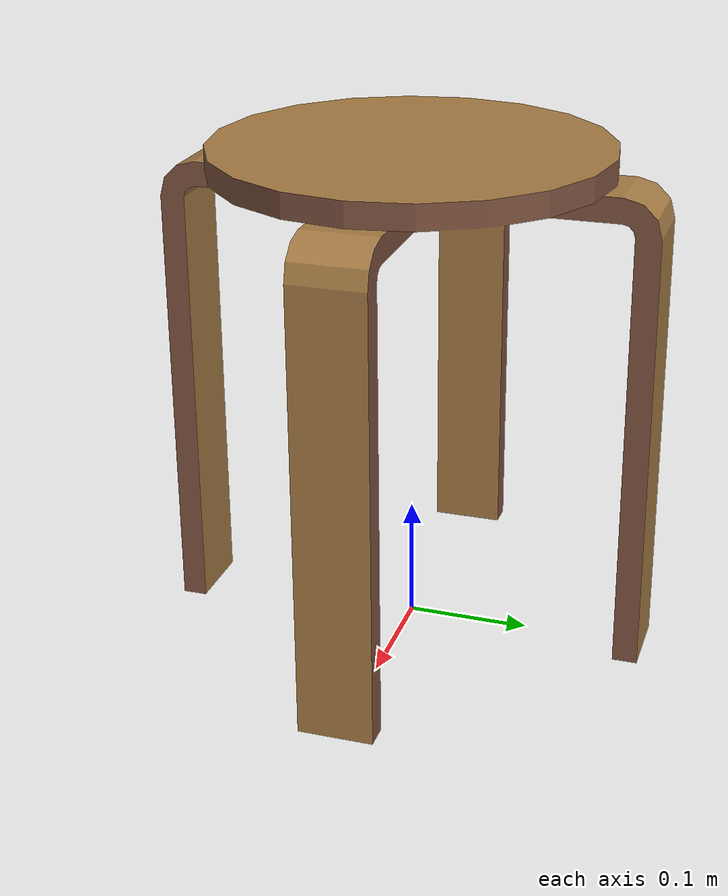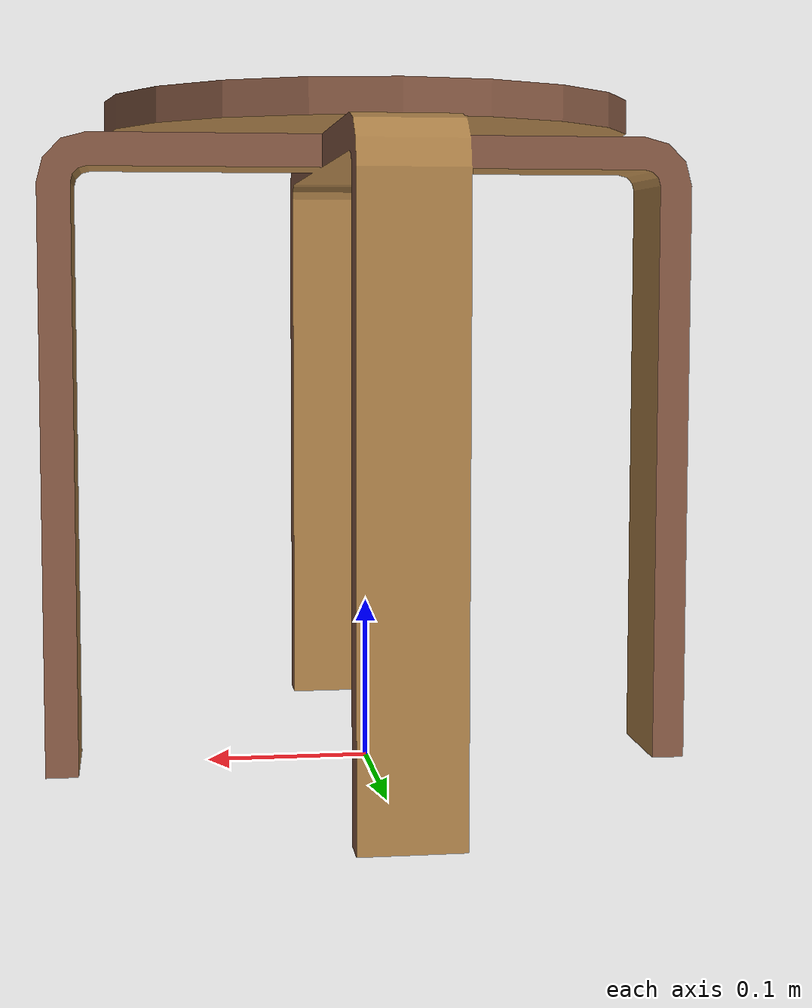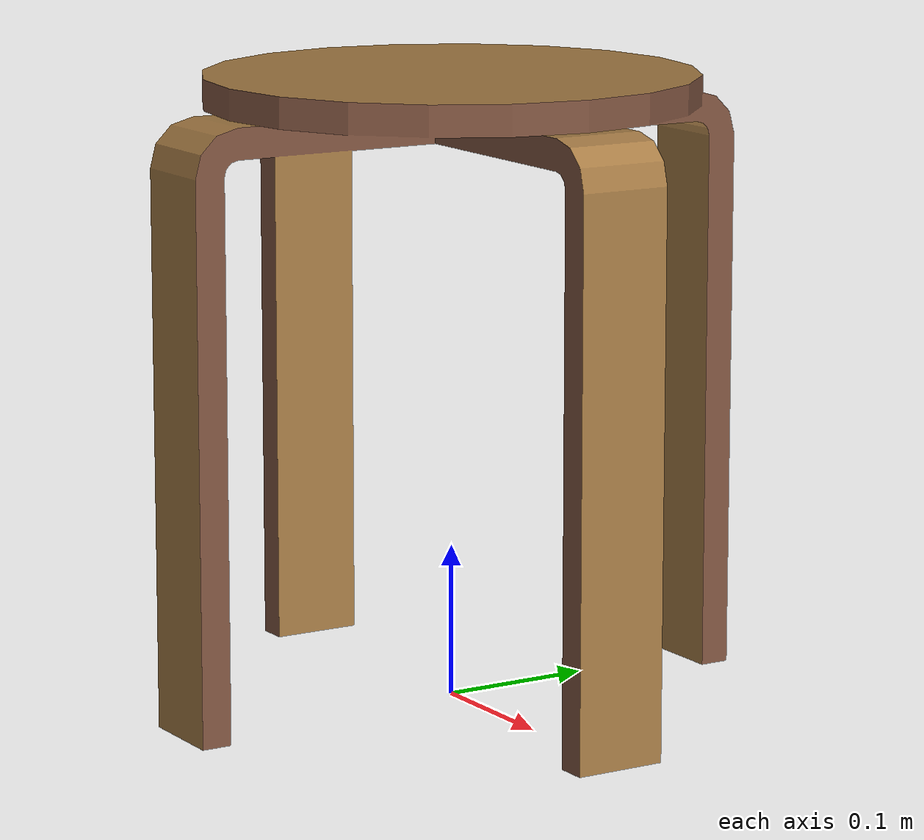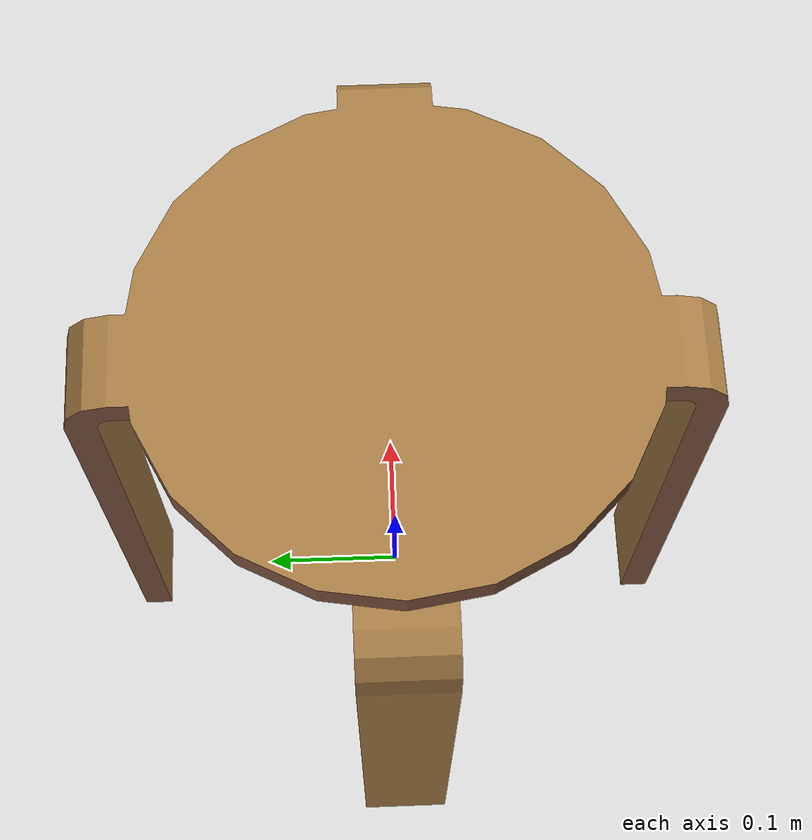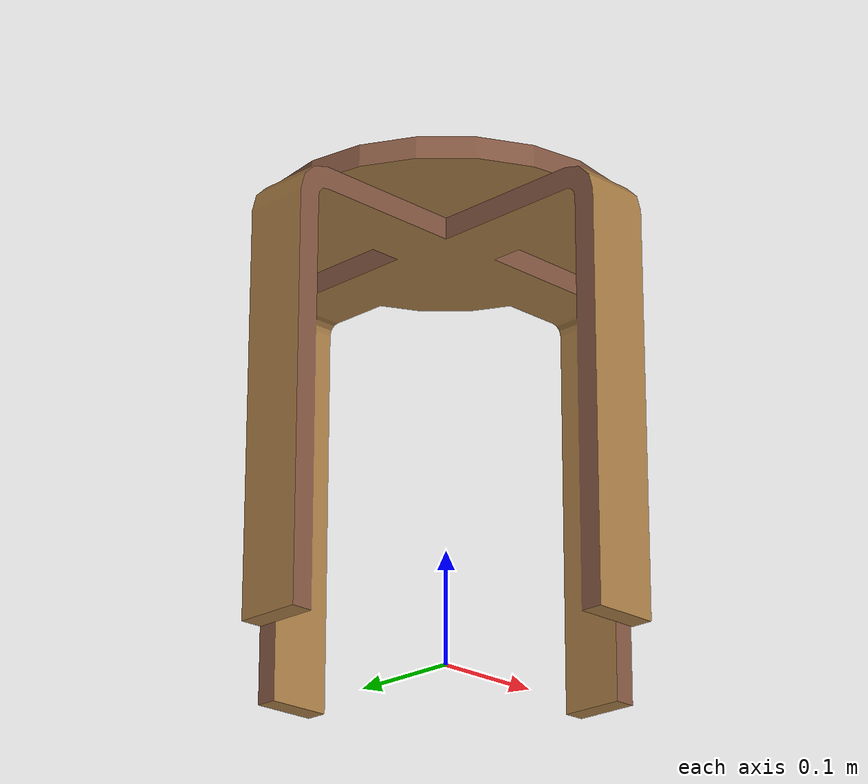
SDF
<?xml version='1.0'?>
<sdf version="1.4">
	<model name="stool">
		<static>1</static>
		<link name="link">
			<visual name="mesh">
				<geometry>
					<mesh>
						<uri>model://meshes/stool.dae</uri>
					</mesh>
				</geometry>
			</visual>
			<collision name="collider">
				<pose>0 0 0.205 0 0 0</pose>
				<geometry>
					<cylinder>
						<radius>0.2</radius>
						<length>0.41</length>
					</cylinder>
				</geometry>
			</collision>
		</link>
	</model>
</sdf>
